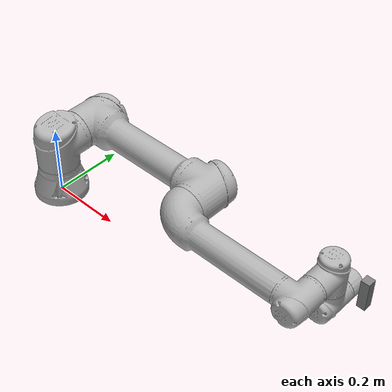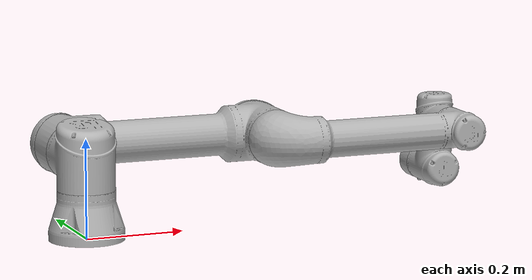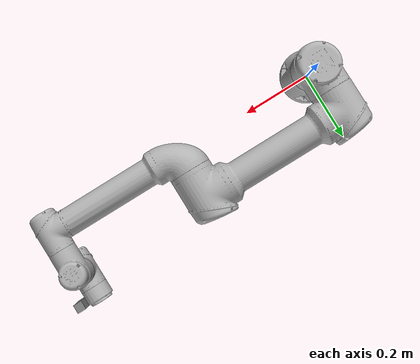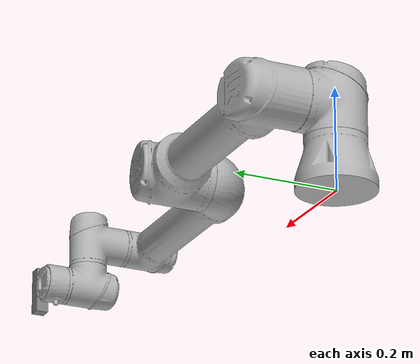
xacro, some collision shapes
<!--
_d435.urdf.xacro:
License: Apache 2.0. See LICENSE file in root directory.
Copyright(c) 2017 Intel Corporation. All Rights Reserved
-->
<?xml version="1.0"?>
<robot xmlns:xacro="http://ros.org/wiki/xacro"
       name="ur5e" >

  <!-- common stuff -->
  <xacro:include filename="$(find ur_e_description)/urdf/common.gazebo.xacro" />

  <!-- ur5e -->
  <xacro:include filename="$(find ur_e_description)/urdf/ur5e.urdf.xacro" />

  <!-- arm -->
  <xacro:ur5e_robot prefix="" joint_limited="false"/>

  <link name="world" />

  <joint name="world_joint" type="fixed">
    <parent link="world" />
    <child link = "base_link" />
    <origin xyz="0.0 0.0 0.0" rpy="0.0 0.0 0.0" />
  </joint>

  <!-- camera -->
  <xacro:arg name="use_nominal_extrinsics" default="false" />
  <xacro:include filename="$(find realsense2_description_iss)/urdf/_d435.urdf.xacro"/>

  <xacro:sensor_d435 parent="wrist_3_link">
    <origin xyz="-0.065 0.08 0.0" rpy="1.57 0.0 1.57"/>
  </xacro:sensor_d435>

</robot>

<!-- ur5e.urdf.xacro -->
<robot xmlns:xacro="http://ros.org/wiki/xacro">

  <xacro:include filename="$(find ur_e_description)/urdf/ur.transmission.xacro" />
  <xacro:include filename="$(find ur_e_description)/urdf/ur.gazebo.xacro" />

  <xacro:macro name="cylinder_inertial" params="radius length mass *origin">
    <inertial>
      <mass value="${mass}" />
      <xacro:insert_block name="origin" />
      <inertia ixx="${0.0833333 * mass * (3 * radius * radius + length * length)}" ixy="0.0" ixz="0.0"
        iyy="${0.0833333 * mass * (3 * radius * radius + length * length)}" iyz="0.0"
        izz="${0.5 * mass * radius * radius}" />
    </inertial>
  </xacro:macro>

  <xacro:macro name="ur5e_robot" params="prefix joint_limited
    shoulder_pan_lower_limit:=${-pi}    shoulder_pan_upper_limit:=${pi}
    shoulder_lift_lower_limit:=${-pi}    shoulder_lift_upper_limit:=${pi}
    elbow_joint_lower_limit:=${-pi}    elbow_joint_upper_limit:=${pi}
    wrist_1_lower_limit:=${-pi}    wrist_1_upper_limit:=${pi}
    wrist_2_lower_limit:=${-pi}    wrist_2_upper_limit:=${pi}
    wrist_3_lower_limit:=${-pi}    wrist_3_upper_limit:=${pi}
    transmission_hw_interface:=hardware_interface/PositionJointInterface
    safety_limits:=false safety_pos_margin:=0.15
    safety_k_position:=20">

    <!-- Inertia parameters -->
    <xacro:property name="base_mass" value="4.0" />  <!-- This mass might be incorrect -->
    <xacro:property name="shoulder_mass" value="3.7000" />
    <xacro:property name="upper_arm_mass" value="8.3930" />
    <xacro:property name="forearm_mass" value="2.2750" />
    <xacro:property name="wrist_1_mass" value="1.2190" />
    <xacro:property name="wrist_2_mass" value="1.2190" />
    <xacro:property name="wrist_3_mass" value="0.1879" />

    <xacro:property name="shoulder_cog" value="0.0 0.00193 -0.02561" />
    <xacro:property name="upper_arm_cog" value="0.0 -0.024201 0.2125" />
    <xacro:property name="forearm_cog" value="0.0 0.0265 0.11993" />
    <xacro:property name="wrist_1_cog" value="0.0 0.110949 0.01634" />
    <xacro:property name="wrist_2_cog" value="0.0 0.0018 0.11099" />
    <xacro:property name="wrist_3_cog" value="0.0 0.001159 0.0" />

    <!-- Kinematic model -->
    <!-- Properties from urcontrol.conf -->
    <xacro:property name="d1" value="0.163" />
    <xacro:property name="a2" value="-0.425" />
    <xacro:property name="a3" value="-0.392" />
    <xacro:property name="d4" value="0.127" />
    <xacro:property name="d5" value="0.100" />
    <xacro:property name="d6" value="0.100" />

    <!-- Arbitrary offsets for shoulder/elbow joints -->
    <xacro:property name="shoulder_offset" value="0.138" />
    <xacro:property name="elbow_offset" value="-0.131" />

    <!-- link lengths used in model -->
    <xacro:property name="shoulder_height" value="${d1}" />
    <xacro:property name="upper_arm_length" value="${-a2}" />
    <xacro:property name="forearm_length" value="${-a3}" />
    <xacro:property name="wrist_1_length" value="${d4}" />
    <xacro:property name="wrist_2_length" value="${d5}" />
    <xacro:property name="wrist_3_length" value="${d6}" />
    <!--property name="shoulder_height" value="0.089159" /-->
    <!--property name="shoulder_offset" value="0.13585" /-->  <!-- shoulder_offset - elbow_offset + wrist_1_length = 0.10915 -->
    <!--property name="upper_arm_length" value="0.42500" /-->
    <!--property name="elbow_offset" value="0.1197" /-->       <!-- CAD measured -->
    <!--property name="forearm_length" value="0.39225" /-->
    <!--property name="wrist_1_length" value="0.093" /-->     <!-- CAD measured -->
    <!--property name="wrist_2_length" value="0.09465" /-->   <!-- In CAD this distance is 0.930, but in the spec it is 0.09465 -->
    <!--property name="wrist_3_length" value="0.0823" /-->

    <xacro:property name="shoulder_radius" value="0.060" />   <!-- manually measured -->
    <xacro:property name="upper_arm_radius" value="0.054" />  <!-- manually measured -->
    <xacro:property name="elbow_radius" value="0.060" />      <!-- manually measured -->
    <xacro:property name="forearm_radius" value="0.040" />    <!-- manually measured -->
    <xacro:property name="wrist_radius" value="0.045" />      <!-- manually measured -->

    <link name="${prefix}base_link" >
      <visual>
        <geometry>
          <mesh filename="package://ur_e_description/meshes/ur5e/visual/base.dae" />
        </geometry>
        <material name="LightGrey">
          <color rgba="0.7 0.7 0.7 1.0"/>
        </material>
      </visual>
      <collision>
        <geometry>
          <mesh filename="package://ur_e_description/meshes/ur5e/collision/base.stl" />
        </geometry>
      </collision>
      <xacro:cylinder_inertial radius="0.06" length="0.05" mass="${base_mass}">
        <origin xyz="0.0 0.0 0.0" rpy="0 0 0" />
      </xacro:cylinder_inertial>
    </link>

    <joint name="${prefix}shoulder_pan_joint" type="revolute">
      <parent link="${prefix}base_link" />
      <child link = "${prefix}shoulder_link" />
      <origin xyz="0.0 0.0 ${shoulder_height}" rpy="0.0 0.0 0.0" />
      <axis xyz="0 0 1" />
      <xacro:unless value="${joint_limited}">
        <limit lower="${-2.0 * pi}" upper="${2.0 * pi}" effort="150.0" velocity="3.14"/>
        <xacro:if value="${safety_limits}">
          <safety_controller soft_lower_limit="${-2.0 * pi + safety_pos_margin}" soft_upper_limit="${2.0 * pi - safety_pos_margin}" k_position="${safety_k_position}" k_velocity="0.0"/>
        </xacro:if>
      </xacro:unless>
      <xacro:if value="${joint_limited}">
        <limit lower="${shoulder_pan_lower_limit}" upper="${shoulder_pan_upper_limit}" effort="150.0" velocity="3.14"/>
        <xacro:if value="${safety_limits}">
          <safety_controller soft_lower_limit="${shoulder_pan_lower_limit + safety_pos_margin}" soft_upper_limit="${shoulder_pan_upper_limit - safety_pos_margin}" k_position="${safety_k_position}" k_velocity="0.0"/>
        </xacro:if>
      </xacro:if>
      <dynamics damping="0.0" friction="0.0"/>
    </joint>

    <link name="${prefix}shoulder_link">
      <visual>
        <geometry>
          <mesh filename="package://ur_e_description/meshes/ur5e/visual/shoulder.dae" />
        </geometry>
        <material name="LightGrey">
          <color rgba="0.7 0.7 0.7 1.0"/>
        </material>
      </visual>
      <collision>
        <geometry>
          <mesh filename="package://ur_e_description/meshes/ur5e/collision/shoulder.stl" />
        </geometry>
      </collision>
      <xacro:cylinder_inertial radius="0.06" length="0.15" mass="${shoulder_mass}">
        <origin xyz="0.0 0.0 0.0" rpy="0 0 0" />
      </xacro:cylinder_inertial>
    </link>

    <joint name="${prefix}shoulder_lift_joint" type="revolute">
      <parent link="${prefix}shoulder_link" />
      <child link = "${prefix}upper_arm_link" />
      <origin xyz="0.0 ${shoulder_offset} 0.0" rpy="0.0 ${pi / 2.0} 0.0" />
      <axis xyz="0 1 0" />
      <xacro:unless value="${joint_limited}">
        <limit lower="${-2.0 * pi}" upper="${2.0 * pi}" effort="150.0" velocity="3.14"/>
        <xacro:if value="${safety_limits}">
          <safety_controller soft_lower_limit="${-2.0 * pi + safety_pos_margin}" soft_upper_limit="${2.0 * pi - safety_pos_margin}" k_position="${safety_k_position}" k_velocity="0.0"/>
        </xacro:if>
      </xacro:unless>
      <xacro:if value="${joint_limited}">
        <limit lower="${shoulder_lift_lower_limit}" upper="${shoulder_lift_upper_limit}" effort="150.0" velocity="3.14"/>
        <xacro:if value="${safety_limits}">
          <safety_controller soft_lower_limit="${shoulder_lift_lower_limit + safety_pos_margin}" soft_upper_limit="${shoulder_lift_upper_limit - safety_pos_margin}" k_position="${safety_k_position}" k_velocity="0.0"/>
        </xacro:if>
      </xacro:if>
      <dynamics damping="0.0" friction="0.0"/>
    </joint>

    <link name="${prefix}upper_arm_link">
      <visual>
        <geometry>
          <mesh filename="package://ur_e_description/meshes/ur5e/visual/upperarm.dae" />
        </geometry>
        <material name="LightGrey">
          <color rgba="0.7 0.7 0.7 1.0"/>
        </material>
      </visual>
      <collision>
        <geometry>
          <mesh filename="package://ur_e_description/meshes/ur5e/collision/upperarm.stl" />
        </geometry>
      </collision>
      <xacro:cylinder_inertial radius="0.06" length="${upper_arm_length}" mass="${upper_arm_mass}">
        <origin xyz="0.0 0.0 ${upper_arm_length/2}" rpy="0 0 0" />
      </xacro:cylinder_inertial>
    </link>

    <joint name="${prefix}elbow_joint" type="revolute">
      <parent link="${prefix}upper_arm_link" />
      <child link = "${prefix}forearm_link" />
      <origin xyz="0.0 ${elbow_offset} ${upper_arm_length}" rpy="0.0 0.0 0.0" />
      <axis xyz="0 1 0" />
      <xacro:unless value="${joint_limited}">
        <limit lower="${-pi}" upper="${pi}" effort="150.0" velocity="3.14"/>
        <xacro:if value="${safety_limits}">
          <safety_controller soft_lower_limit="${-2.0 * pi + safety_pos_margin}" soft_upper_limit="${2.0 * pi - safety_pos_margin}" k_position="${safety_k_position}" k_velocity="0.0"/>
        </xacro:if>
      </xacro:unless>
      <xacro:if value="${joint_limited}">
        <limit lower="${elbow_joint_lower_limit}" upper="${elbow_joint_upper_limit}" effort="150.0" velocity="3.14"/>
        <xacro:if value="${safety_limits}">
          <safety_controller soft_lower_limit="${elbow_joint_lower_limit + safety_pos_margin}" soft_upper_limit="${elbow_joint_upper_limit - safety_pos_margin}" k_position="${safety_k_position}" k_velocity="0.0"/>
        </xacro:if>
      </xacro:if>
      <dynamics damping="0.0" friction="0.0"/>
    </joint>

    <link name="${prefix}forearm_link">
      <visual>
        <geometry>
          <mesh filename="package://ur_e_description/meshes/ur5e/visual/forearm.dae" />
        </geometry>
        <material name="LightGrey">
          <color rgba="0.7 0.7 0.7 1.0"/>
        </material>
      </visual>
      <collision>
        <geometry>
          <mesh filename="package://ur_e_description/meshes/ur5e/collision/forearm.stl" />
        </geometry>
      </collision>
      <xacro:cylinder_inertial radius="0.06" length="${forearm_length}" mass="${forearm_mass}">
        <origin xyz="0.0 0.0 ${forearm_length/2}" rpy="0 0 0" />
      </xacro:cylinder_inertial>
    </link>

    <joint name="${prefix}wrist_1_joint" type="revolute">
      <parent link="${prefix}forearm_link" />
      <child link = "${prefix}wrist_1_link" />
      <origin xyz="0.0 0.0 ${forearm_length}" rpy="0.0 ${pi / 2.0} 0.0" />
      <axis xyz="0 1 0" />
      <xacro:unless value="${joint_limited}">
        <limit lower="${-2.0 * pi}" upper="${2.0 * pi}" effort="28.0" velocity="6.28"/>
        <xacro:if value="${safety_limits}">
          <safety_controller soft_lower_limit="${-2.0 * pi + safety_pos_margin}" soft_upper_limit="${2.0 * pi - safety_pos_margin}" k_position="${safety_k_position}" k_velocity="0.0"/>
        </xacro:if>
      </xacro:unless>
      <xacro:if value="${joint_limited}">
        <limit lower="${wrist_1_lower_limit}" upper="${wrist_1_upper_limit}" effort="28.0" velocity="6.28"/>
        <xacro:if value="${safety_limits}">
          <safety_controller soft_lower_limit="${wrist_1_lower_limit + safety_pos_margin}" soft_upper_limit="${wrist_1_upper_limit - safety_pos_margin}" k_position="${safety_k_position}" k_velocity="0.0"/>
        </xacro:if>
      </xacro:if>
      <dynamics damping="0.0" friction="0.0"/>
    </joint>

    <link name="${prefix}wrist_1_link">
      <visual>
        <geometry>
          <mesh filename="package://ur_e_description/meshes/ur5e/visual/wrist1.dae" />
        </geometry>
        <material name="LightGrey">
          <color rgba="0.7 0.7 0.7 1.0"/>
        </material>
      </visual>
      <collision>
        <geometry>
          <mesh filename="package://ur_e_description/meshes/ur5e/collision/wrist1.stl" />
        </geometry>
      </collision>
      <xacro:cylinder_inertial radius="0.06" length="0.12" mass="${wrist_1_mass}">
        <origin xyz="0.0 ${wrist_1_length} 0.0" rpy="0 0 0" />
      </xacro:cylinder_inertial>
    </link>

    <joint name="${prefix}wrist_2_joint" type="revolute">
      <parent link="${prefix}wrist_1_link" />
      <child link = "${prefix}wrist_2_link" />
      <origin xyz="0.0 ${wrist_1_length} 0.0" rpy="0.0 0.0 0.0" />
      <axis xyz="0 0 1" />
      <xacro:unless value="${joint_limited}">
        <limit lower="${-2.0 * pi}" upper="${2.0 * pi}" effort="28.0" velocity="6.28"/>
        <xacro:if value="${safety_limits}">
          <safety_controller soft_lower_limit="${-2.0 * pi + safety_pos_margin}" soft_upper_limit="${2.0 * pi - safety_pos_margin}" k_position="${safety_k_position}" k_velocity="0.0"/>
        </xacro:if>
      </xacro:unless>
      <xacro:if value="${joint_limited}">
        <limit lower="${wrist_2_lower_limit}" upper="${wrist_2_upper_limit}" effort="28.0" velocity="6.28"/>
        <xacro:if value="${safety_limits}">
          <safety_controller soft_lower_limit="${wrist_2_lower_limit + safety_pos_margin}" soft_upper_limit="${wrist_2_upper_limit - safety_pos_margin}" k_position="${safety_k_position}" k_velocity="0.0"/>
        </xacro:if>
      </xacro:if>
      <dynamics damping="0.0" friction="0.0"/>
    </joint>

    <link name="${prefix}wrist_2_link">
      <visual>
        <geometry>
          <mesh filename="package://ur_e_description/meshes/ur5e/visual/wrist2.dae" />
        </geometry>
        <material name="LightGrey">
          <color rgba="0.7 0.7 0.7 1.0"/>
        </material>
      </visual>
      <collision>
        <geometry>
          <mesh filename="package://ur_e_description/meshes/ur5e/collision/wrist2.stl" />
        </geometry>
      </collision>
      <xacro:cylinder_inertial radius="0.06" length="0.12" mass="${wrist_2_mass}">
        <origin xyz="0.0 0.0 ${wrist_2_length}" rpy="0 0 0" />
      </xacro:cylinder_inertial>
    </link>

    <joint name="${prefix}wrist_3_joint" type="revolute">
      <parent link="${prefix}wrist_2_link" />
      <child link = "${prefix}wrist_3_link" />
      <origin xyz="0.0 0.0 ${wrist_2_length}" rpy="0.0 0.0 0.0" />
      <axis xyz="0 1 0" />
      <xacro:unless value="${joint_limited}">
        <limit lower="${-2.0 * pi}" upper="${2.0 * pi}" effort="28.0" velocity="6.28"/>
        <xacro:if value="${safety_limits}">
          <safety_controller soft_lower_limit="${-2.0 * pi + safety_pos_margin}" soft_upper_limit="${2.0 * pi - safety_pos_margin}" k_position="${safety_k_position}" k_velocity="0.0"/>
        </xacro:if>
      </xacro:unless>
      <xacro:if value="${joint_limited}">
        <limit lower="${wrist_3_lower_limit}" upper="${wrist_3_upper_limit}" effort="28.0" velocity="6.28"/>
        <xacro:if value="${safety_limits}">
          <safety_controller soft_lower_limit="${wrist_3_lower_limit + safety_pos_margin}" soft_upper_limit="${wrist_3_upper_limit - safety_pos_margin}" k_position="${safety_k_position}" k_velocity="0.0"/>
        </xacro:if>
      </xacro:if>
      <dynamics damping="0.0" friction="0.0"/>
    </joint>

    <link name="${prefix}wrist_3_link">
      <visual>
        <geometry>
          <mesh filename="package://ur_e_description/meshes/ur5e/visual/wrist3.dae" />
        </geometry>
        <material name="LightGrey">
          <color rgba="0.7 0.7 0.7 1.0"/>
        </material>
      </visual>
      <collision>
        <geometry>
          <mesh filename="package://ur_e_description/meshes/ur5e/collision/wrist3.stl" />
        </geometry>
      </collision>
      <xacro:cylinder_inertial radius="0.0375" length="0.0458" mass="${wrist_3_mass}">
        <origin xyz="0.0 ${wrist_3_length - 0.0458/2} 0.0" rpy="${pi/2} 0 0" />
      </xacro:cylinder_inertial>
    </link>

    <joint name="${prefix}ee_fixed_joint" type="fixed">
      <parent link="${prefix}wrist_3_link" />
      <child link = "${prefix}ee_link" />
      <origin xyz="0.0 ${wrist_3_length} 0.0" rpy="0.0 0.0 ${pi/2.0}" />
    </joint>

    <link name="${prefix}ee_link">
      <collision>
        <geometry>
          <box size="0.01 0.01 0.01"/>
        </geometry>
        <origin rpy="0 0 0" xyz="-0.01 0 0"/>
      </collision>
    </link>

    <xacro:ur_arm_transmission prefix="${prefix}" />
    <xacro:ur_arm_gazebo prefix="${prefix}" />

    <!-- ROS base_link to UR 'Base' Coordinates transform -->
    <link name="${prefix}base"/>
    <joint name="${prefix}base_link-base_fixed_joint" type="fixed">
      <!-- NOTE: this rotation is only needed as long as base_link itself is
                 not corrected wrt the real robot (ie: rotated over 180
                 degrees)
      -->
      <origin xyz="0 0 0" rpy="0 0 ${-pi}"/>
      <parent link="${prefix}base_link"/>
      <child link="${prefix}base"/>
    </joint>

    <!-- Frame coincident with all-zeros TCP on UR controller -->
    <link name="${prefix}tool0"/>
    <joint name="${prefix}wrist_3_link-tool0_fixed_joint" type="fixed">
      <origin xyz="0 ${wrist_3_length} 0" rpy="${pi/-2.0} 0 0"/>
      <parent link="${prefix}wrist_3_link"/>
      <child link="${prefix}tool0"/>
    </joint>

  </xacro:macro>
</robot>

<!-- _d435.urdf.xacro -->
<robot name="sensor_d435" xmlns:xacro="http://ros.org/wiki/xacro">
  <!--File includes-->
  <xacro:include filename="$(find ur5e_cam_description)/urdf/_d435.gazebo.xacro"/>

  <xacro:macro name="sensor_d435" params="name:=camera topics_ns:=camera parent *origin">
    <xacro:property name="M_PI" value="3.1415926535897931" />

    <!-- The following values are approximate, and the camera node
     publishing TF values with actual calibrated camera extrinsic values -->
    <xacro:property name="d435_cam_depth_to_left_ir_offset" value="0.0"/>
    <xacro:property name="d435_cam_depth_to_right_ir_offset" value="-0.050"/>
    <xacro:property name="d435_cam_depth_to_color_offset" value="0.015"/>

    <!-- The following values model the aluminum peripherial case for the
  	D435 camera, with the camera joint represented by the actual
  	peripherial camera tripod mount -->
    <xacro:property name="d435_cam_width" value="0.090"/>
    <xacro:property name="d435_cam_height" value="0.025"/>
    <xacro:property name="d435_cam_depth" value="0.02505"/>
    <xacro:property name="d435_cam_mount_from_center_offset" value="0.0149"/>

    <!-- The following offset is relative the the physical D435 camera peripherial
  	camera tripod mount -->
    <xacro:property name="d435_cam_depth_px" value="${d435_cam_mount_from_center_offset}"/>
    <xacro:property name="d435_cam_depth_py" value="0.0175"/>
    <xacro:property name="d435_cam_depth_pz" value="${d435_cam_height/2}"/>

    <material name="${name}_aluminum">
	  <color rgba="0.5 0.5 0.5 1"/>
    </material>

    <!-- camera body, with origin at bottom screw mount -->
    <joint name="${name}_joint" type="fixed">
      <xacro:insert_block name="origin" />
      <parent link="${parent}"/>
      <child link="${name}_bottom_screw_frame" />
    </joint>
    <link name="${name}_bottom_screw_frame"/>

    <joint name="${name}_link_joint" type="fixed">
      <origin xyz="0 ${d435_cam_depth_py} ${d435_cam_depth_pz}" rpy="0 0 0"/>
      <parent link="${name}_bottom_screw_frame"/>
      <child link="${name}_link" />
    </joint>

    <link name="${name}_link">
      <visual>
      <origin xyz="${d435_cam_mount_from_center_offset} ${-d435_cam_depth_py} 0" rpy="${M_PI/2} 0 ${M_PI/2}"/>
        <geometry>
          <mesh filename="package://realsense2_description/meshes/d435.dae" />
        </geometry>
        <material name="${name}_aluminum"/>
      </visual>
      <collision>
        <origin xyz="0 ${-d435_cam_depth_py} 0" rpy="0 0 0"/>
        <geometry>
        <box size="${d435_cam_depth} ${d435_cam_width} ${d435_cam_height}"/>
        </geometry>
      </collision>
      <inertial>
        <!-- The following are not reliable values, and should not be used for modeling -->
        <mass value="0.564" />
        <origin xyz="0 0 0" />
        <inertia ixx="0.003881243" ixy="0.0" ixz="0.0" iyy="0.000498940" iyz="0.0" izz="0.003879257" />
      </inertial>
    </link>

    <!-- camera depth joints and links -->
    <joint name="${name}_depth_joint" type="fixed">
      <origin xyz="0 0 0" rpy="0 0 0"/>
      <parent link="${name}_link"/>
      <child link="${name}_depth_frame" />
    </joint>
    <link name="${name}_depth_frame"/>

    <joint name="${name}_depth_optical_joint" type="fixed">
      <origin xyz="0 0 0" rpy="${-M_PI/2} 0 ${-M_PI/2}" />
      <parent link="${name}_depth_frame" />
      <child link="${name}_depth_optical_frame" />
    </joint>
    <link name="${name}_depth_optical_frame"/>

    <!-- camera left IR joints and links -->
    <joint name="${name}_left_ir_joint" type="fixed">
      <origin xyz="0 ${d435_cam_depth_to_left_ir_offset} 0" rpy="0 0 0" />
      <parent link="${name}_depth_frame" />
      <child link="${name}_left_ir_frame" />
    </joint>
    <link name="${name}_left_ir_frame"/>

    <joint name="${name}_left_ir_optical_joint" type="fixed">
      <origin xyz="0 0 0" rpy="${-M_PI/2} 0 ${-M_PI/2}" />
      <parent link="${name}_left_ir_frame" />
      <child link="${name}_left_ir_optical_frame" />
    </joint>
    <link name="${name}_left_ir_optical_frame"/>

    <!-- camera right IR joints and links -->
    <joint name="${name}_right_ir_joint" type="fixed">
      <origin xyz="0 ${d435_cam_depth_to_right_ir_offset} 0" rpy="0 0 0" />
      <parent link="${name}_depth_frame" />
      <child link="${name}_right_ir_frame" />
    </joint>
    <link name="${name}_right_ir_frame"/>

    <joint name="${name}_right_ir_optical_joint" type="fixed">
      <origin xyz="0 0 0" rpy="${-M_PI/2} 0 ${-M_PI/2}" />
      <parent link="${name}_right_ir_frame" />
      <child link="${name}_right_ir_optical_frame" />
    </joint>
    <link name="${name}_right_ir_optical_frame"/>

    <!-- camera color joints and links -->
    <joint name="${name}_color_joint" type="fixed">
      <origin xyz="0 ${d435_cam_depth_to_color_offset} 0" rpy="0 0 0" />
      <parent link="${name}_depth_frame" />
      <child link="${name}_color_frame" />
    </joint>
    <link name="${name}_color_frame"/>

    <joint name="${name}_color_optical_joint" type="fixed">
      <origin xyz="0 0 0" rpy="${-M_PI/2} 0 ${-M_PI/2}" />
      <parent link="${name}_color_frame" />
      <child link="${name}_color_optical_frame" />
    </joint>
    <link name="${name}_color_optical_frame"/>

    <!-- Realsense Gazebo Plugin -->
    <xacro:gazebo_d435 camera_name="${name}" reference_link="${name}_link" topics_ns="${topics_ns}" depth_optical_frame="${name}_depth_optical_frame" color_optical_frame="${name}_color_optical_frame" infrared1_optical_frame="${name}_left_ir_optical_frame" infrared2_optical_frame="${name}_right_ir_optical_frame"/>

  </xacro:macro>
</robot>
